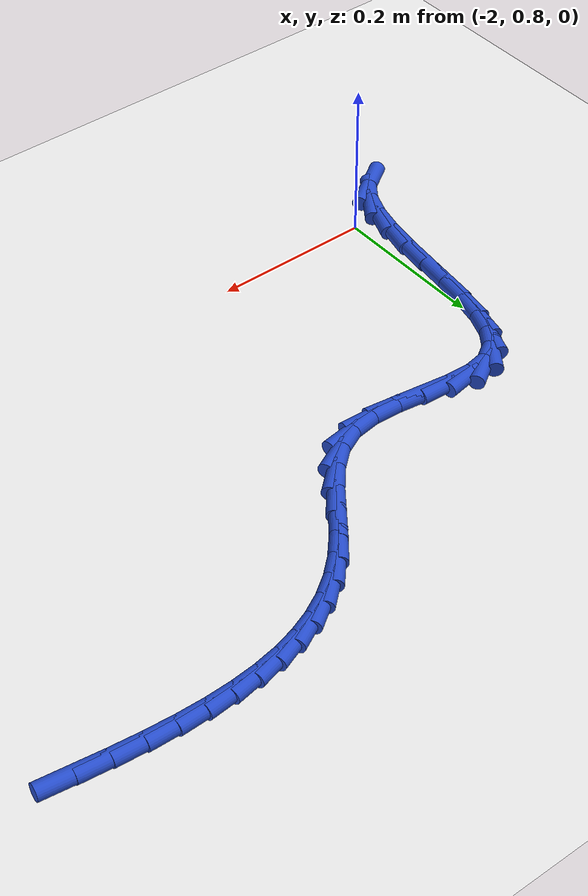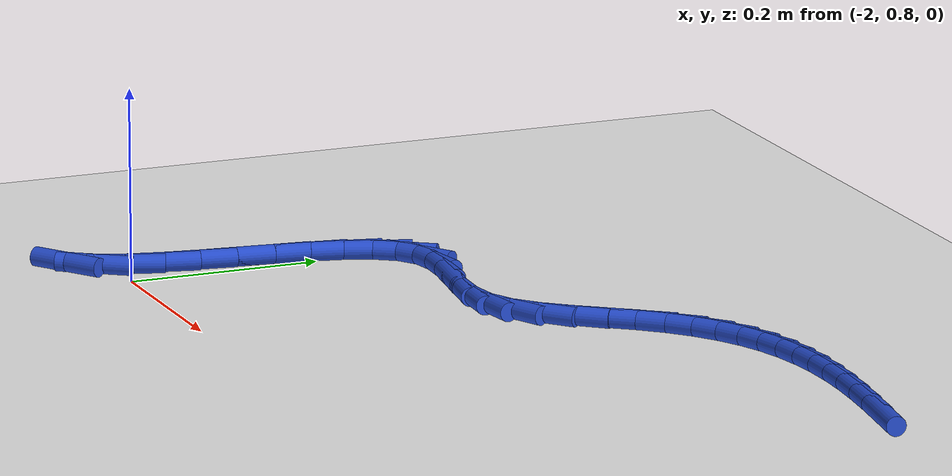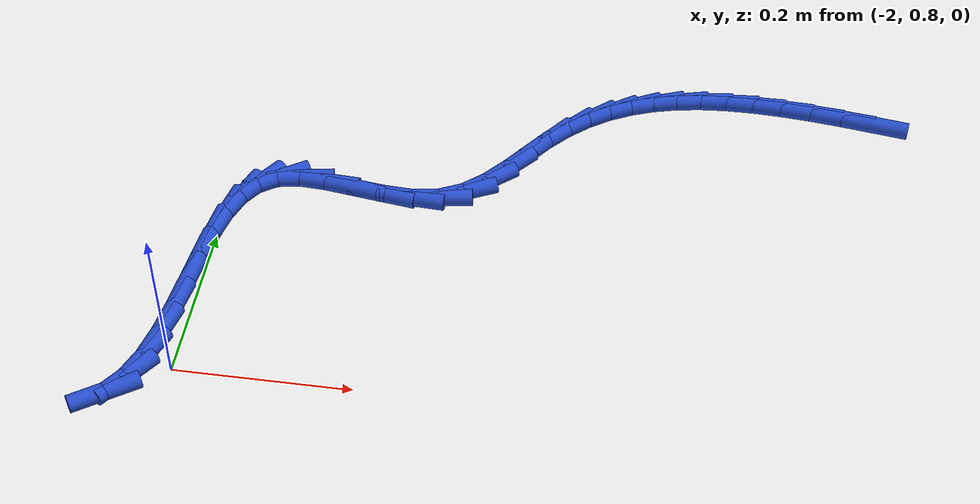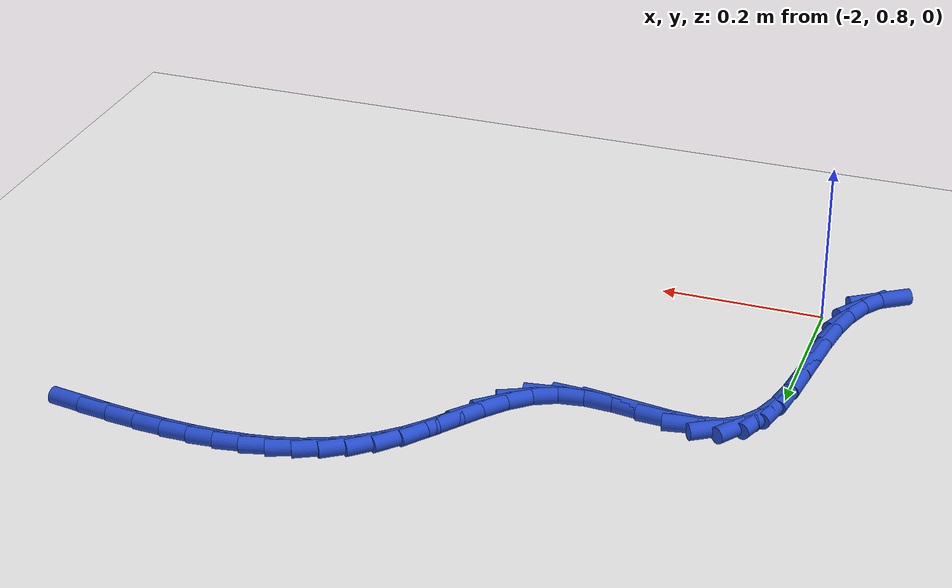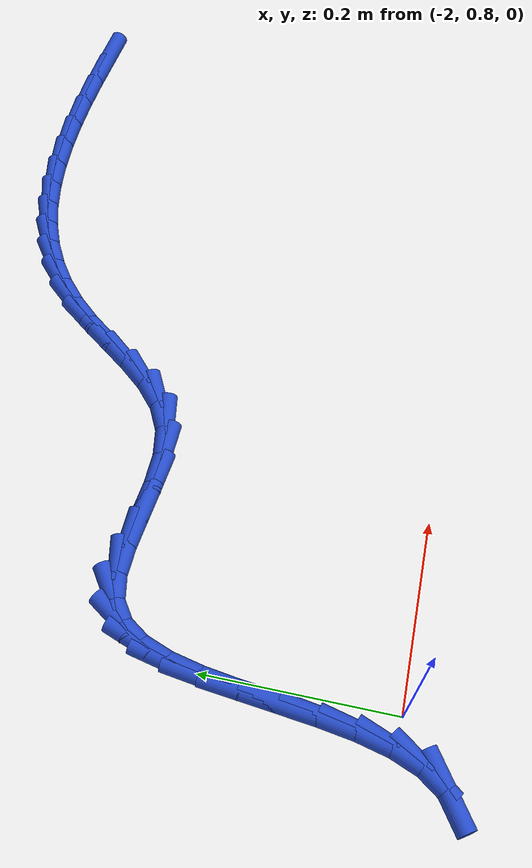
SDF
<sdf version="1.6">
 <world name="default">
  <model name="ground_plane">
   <static>1</static>
   <link name="link">
    <collision name="collision">
     <geometry><plane><normal>0 0 1</normal><size>100 100</size></plane></geometry>
     <surface><friction><ode><mu>100</mu><mu2>50</mu2></ode></friction></surface>
    </collision>
    <visual name="visual">
     <cast_shadows>0</cast_shadows>
     <geometry><plane><normal>0 0 1</normal><size>100 100</size></plane></geometry>
     <material>
      <script><uri>file://media/materials/scripts/gazebo.material</uri><name>Gazebo/WhiteGlow</name></script>
     </material>
    </visual>
   </link>
  </model>
  <model name="line">
   <link name="link_62">
    <pose>-1.2545794086238367 1.2839978153059892 0.01 0 1.57 -0.14442993478592728</pose>
    <collision name="collision">
     <geometry><cylinder><radius>0.01</radius><length>0.08</length></cylinder></geometry>
    </collision>
    <visual name="visual">
     <material>
      <script><name>Gazebo/Blue</name><uri>file://media/materials/scripts/gazebo.material</uri></script>
     </material>
     <geometry><cylinder><radius>0.01</radius><length>0.08</length></cylinder></geometry>
    </visual>
   </link>
   <link name="link_63">
    <pose>-1.2942668618375504 1.2897700638931013 0.01 0 1.57 -0.1192761792237048</pose>
    <collision name="collision">
     <geometry><cylinder><radius>0.01</radius><length>0.08</length></cylinder></geometry>
    </collision>
    <visual name="visual">
     <material>
      <script><name>Gazebo/Blue</name><uri>file://media/materials/scripts/gazebo.material</uri></script>
     </material>
     <geometry><cylinder><radius>0.01</radius><length>0.08</length></cylinder></geometry>
    </visual>
   </link>
   <link name="link_64">
    <pose>-1.3321594873666056 1.2943113077401995 0.01 0 1.57 -0.08537701563046377</pose>
    <collision name="collision">
     <geometry><cylinder><radius>0.01</radius><length>0.08</length></cylinder></geometry>
    </collision>
    <visual name="visual">
     <material>
      <script><name>Gazebo/Blue</name><uri>file://media/materials/scripts/gazebo.material</uri></script>
     </material>
     <geometry><cylinder><radius>0.01</radius><length>0.08</length></cylinder></geometry>
    </visual>
   </link>
   <link name="link_65">
    <pose>-1.3683018481094011 1.2974045540927421 0.01 0 1.57 -0.04145111778018368</pose>
    <collision name="collision">
     <geometry><cylinder><radius>0.01</radius><length>0.08</length></cylinder></geometry>
    </collision>
    <visual name="visual">
     <material>
      <script><name>Gazebo/Blue</name><uri>file://media/materials/scripts/gazebo.material</uri></script>
     </material>
     <geometry><cylinder><radius>0.01</radius><length>0.08</length></cylinder></geometry>
    </visual>
   </link>
   <link name="link_66">
    <pose>-1.4027385069643354 1.2988328101961863 0.01 0 1.57 0.013842584986247157</pose>
    <collision name="collision">
     <geometry><cylinder><radius>0.01</radius><length>0.08</length></cylinder></geometry>
    </collision>
    <visual name="visual">
     <material>
      <script><name>Gazebo/Blue</name><uri>file://media/materials/scripts/gazebo.material</uri></script>
     </material>
     <geometry><cylinder><radius>0.01</radius><length>0.08</length></cylinder></geometry>
    </visual>
   </link>
   <link name="link_67">
    <pose>-1.4355140268298054 1.29837908329599 0.01 0 1.57 0.0817426464039682</pose>
    <collision name="collision">
     <geometry><cylinder><radius>0.01</radius><length>0.08</length></cylinder></geometry>
    </collision>
    <visual name="visual">
     <material>
      <script><name>Gazebo/Blue</name><uri>file://media/materials/scripts/gazebo.material</uri></script>
     </material>
     <geometry><cylinder><radius>0.01</radius><length>0.08</length></cylinder></geometry>
    </visual>
   </link>
   <link name="link_68">
    <pose>-1.4666729706042119 1.295826380637612 0.01 0 1.57 0.16309317818951494</pose>
    <collision name="collision">
     <geometry><cylinder><radius>0.01</radius><length>0.08</length></cylinder></geometry>
    </collision>
    <visual name="visual">
     <material>
      <script><name>Gazebo/Blue</name><uri>file://media/materials/scripts/gazebo.material</uri></script>
     </material>
     <geometry><cylinder><radius>0.01</radius><length>0.08</length></cylinder></geometry>
    </visual>
   </link>
   <link name="link_69">
    <pose>-1.496259901185951 1.2909577094665095 0.01 0 1.57 0.25790886222534687</pose>
    <collision name="collision">
     <geometry><cylinder><radius>0.01</radius><length>0.08</length></cylinder></geometry>
    </collision>
    <visual name="visual">
     <material>
      <script><name>Gazebo/Blue</name><uri>file://media/materials/scripts/gazebo.material</uri></script>
     </material>
     <geometry><cylinder><radius>0.01</radius><length>0.08</length></cylinder></geometry>
    </visual>
   </link>
   <link name="link_70">
    <pose>-1.5243193814734226 1.283556077028141 0.01 0 1.57 0.3648714225045601</pose>
    <collision name="collision">
     <geometry><cylinder><radius>0.01</radius><length>0.08</length></cylinder></geometry>
    </collision>
    <visual name="visual">
     <material>
      <script><name>Gazebo/Blue</name><uri>file://media/materials/scripts/gazebo.material</uri></script>
     </material>
     <geometry><cylinder><radius>0.01</radius><length>0.08</length></cylinder></geometry>
    </visual>
   </link>
   <link name="link_71">
    <pose>-1.550895974365024 1.2734044905679636 0.01 0 1.57 0.4809784214079071</pose>
    <collision name="collision">
     <geometry><cylinder><radius>0.01</radius><length>0.08</length></cylinder></geometry>
    </collision>
    <visual name="visual">
     <material>
      <script><name>Gazebo/Blue</name><uri>file://media/materials/scripts/gazebo.material</uri></script>
     </material>
     <geometry><cylinder><radius>0.01</radius><length>0.08</length></cylinder></geometry>
    </visual>
   </link>
   <link name="link_72">
    <pose>-1.5760342427591543 1.2602859573314364 0.01 0 1.57 0.6016614773602363</pose>
    <collision name="collision">
     <geometry><cylinder><radius>0.01</radius><length>0.08</length></cylinder></geometry>
    </collision>
    <visual name="visual">
     <material>
      <script><name>Gazebo/Blue</name><uri>file://media/materials/scripts/gazebo.material</uri></script>
     </material>
     <geometry><cylinder><radius>0.01</radius><length>0.08</length></cylinder></geometry>
    </visual>
   </link>
   <link name="link_73">
    <pose>-1.5997787495542117 1.243983484564016 0.01 0 1.57 0.7215424525169127</pose>
    <collision name="collision">
     <geometry><cylinder><radius>0.01</radius><length>0.08</length></cylinder></geometry>
    </collision>
    <visual name="visual">
     <material>
      <script><name>Gazebo/Blue</name><uri>file://media/materials/scripts/gazebo.material</uri></script>
     </material>
     <geometry><cylinder><radius>0.01</radius><length>0.08</length></cylinder></geometry>
    </visual>
   </link>
   <link name="link_74">
    <pose>-1.6221740576485941 1.2242800795111617 0.01 0 1.57 0.8355153975070486</pose>
    <collision name="collision">
     <geometry><cylinder><radius>0.01</radius><length>0.08</length></cylinder></geometry>
    </collision>
    <visual name="visual">
     <material>
      <script><name>Gazebo/Blue</name><uri>file://media/materials/scripts/gazebo.material</uri></script>
     </material>
     <geometry><cylinder><radius>0.01</radius><length>0.08</length></cylinder></geometry>
    </visual>
   </link>
   <link name="link_75">
    <pose>-1.6432655830975702 1.2009609494797389 0.01 0 1.57 0.9194087114371494</pose>
    <collision name="collision">
     <geometry><cylinder><radius>0.01</radius><length>0.08</length></cylinder></geometry>
    </collision>
    <visual name="visual">
     <material>
      <script><name>Gazebo/Blue</name><uri>file://media/materials/scripts/gazebo.material</uri></script>
     </material>
     <geometry><cylinder><radius>0.01</radius><length>0.08</length></cylinder></geometry>
    </visual>
   </link>
   <link name="link_76">
    <pose>-1.663390591743341 1.174563903644059 0.01 0 1.57 0.9297704227407712</pose>
    <collision name="collision">
     <geometry><cylinder><radius>0.01</radius><length>0.08</length></cylinder></geometry>
    </collision>
    <visual name="visual">
     <material>
      <script><name>Gazebo/Blue</name><uri>file://media/materials/scripts/gazebo.material</uri></script>
     </material>
     <geometry><cylinder><radius>0.01</radius><length>0.08</length></cylinder></geometry>
    </visual>
   </link>
   <link name="link_77">
    <pose>-1.6836029474469532 1.1474746641505664 0.01 0 1.57 0.8637215015365295</pose>
    <collision name="collision">
     <geometry><cylinder><radius>0.01</radius><length>0.08</length></cylinder></geometry>
    </collision>
    <visual name="visual">
     <material>
      <script><name>Gazebo/Blue</name><uri>file://media/materials/scripts/gazebo.material</uri></script>
     </material>
     <geometry><cylinder><radius>0.01</radius><length>0.08</length></cylinder></geometry>
    </visual>
   </link>
   <link name="link_78">
    <pose>-1.7050645019166821 1.1223574246715515 0.01 0 1.57 0.7090803871804763</pose>
    <collision name="collision">
     <geometry><cylinder><radius>0.01</radius><length>0.08</length></cylinder></geometry>
    </collision>
    <visual name="visual">
     <material>
      <script><name>Gazebo/Blue</name><uri>file://media/materials/scripts/gazebo.material</uri></script>
     </material>
     <geometry><cylinder><radius>0.01</radius><length>0.08</length></cylinder></geometry>
    </visual>
   </link>
   <link name="link_79">
    <pose>-1.7289371068608026 1.1018763788793076 0.01 0 1.57 0.44774948250662944</pose>
    <collision name="collision">
     <geometry><cylinder><radius>0.01</radius><length>0.08</length></cylinder></geometry>
    </collision>
    <visual name="visual">
     <material>
      <script><name>Gazebo/Blue</name><uri>file://media/materials/scripts/gazebo.material</uri></script>
     </material>
     <geometry><cylinder><radius>0.01</radius><length>0.08</length></cylinder></geometry>
    </visual>
   </link>
   <link name="link_80">
    <pose>-1.756382230927145 1.0886949683589635 0.01 0 1.57 0.14105007680048615</pose>
    <collision name="collision">
     <geometry><cylinder><radius>0.01</radius><length>0.08</length></cylinder></geometry>
    </collision>
    <visual name="visual">
     <material>
      <script><name>Gazebo/Blue</name><uri>file://media/materials/scripts/gazebo.material</uri></script>
     </material>
     <geometry><cylinder><radius>0.01</radius><length>0.08</length></cylinder></geometry>
    </visual>
   </link>
   <link name="link_81">
    <pose>-1.787919706054736 1.084216868153167 0.01 0 1.57 -0.05245119264946767</pose>
    <collision name="collision">
     <geometry><cylinder><radius>0.01</radius><length>0.08</length></cylinder></geometry>
    </collision>
    <visual name="visual">
     <material>
      <script><name>Gazebo/Blue</name><uri>file://media/materials/scripts/gazebo.material</uri></script>
     </material>
     <geometry><cylinder><radius>0.01</radius><length>0.08</length></cylinder></geometry>
    </visual>
   </link>
   <link name="link_82">
    <pose>-1.8221168180619594 1.086012194155466 0.01 0 1.57 -0.13922891966533646</pose>
    <collision name="collision">
     <geometry><cylinder><radius>0.01</radius><length>0.08</length></cylinder></geometry>
    </collision>
    <visual name="visual">
     <material>
      <script><name>Gazebo/Blue</name><uri>file://media/materials/scripts/gazebo.material</uri></script>
     </material>
     <geometry><cylinder><radius>0.01</radius><length>0.08</length></cylinder></geometry>
    </visual>
   </link>
   <link name="link_83">
    <pose>-1.8571707948383407 1.0909245037705364 0.01 0 1.57 -0.14190479173713325</pose>
    <collision name="collision">
     <geometry><cylinder><radius>0.01</radius><length>0.08</length></cylinder></geometry>
    </collision>
    <visual name="visual">
     <material>
      <script><name>Gazebo/Blue</name><uri>file://media/materials/scripts/gazebo.material</uri></script>
     </material>
     <geometry><cylinder><radius>0.01</radius><length>0.08</length></cylinder></geometry>
    </visual>
   </link>
   <link name="link_84">
    <pose>-1.8912788642734089 1.0957973544030566 0.01 0 1.57 -0.05342429580085784</pose>
    <collision name="collision">
     <geometry><cylinder><radius>0.01</radius><length>0.08</length></cylinder></geometry>
    </collision>
    <visual name="visual">
     <material>
      <script><name>Gazebo/Blue</name><uri>file://media/materials/scripts/gazebo.material</uri></script>
     </material>
     <geometry><cylinder><radius>0.01</radius><length>0.08</length></cylinder></geometry>
    </visual>
   </link>
   <link name="link_85">
    <pose>-1.9226382542566902 1.0974743034577028 0.01 0 1.57 0.17266671812136425</pose>
    <collision name="collision">
     <geometry><cylinder><radius>0.01</radius><length>0.08</length></cylinder></geometry>
    </collision>
    <visual name="visual">
     <material>
      <script><name>Gazebo/Blue</name><uri>file://media/materials/scripts/gazebo.material</uri></script>
     </material>
     <geometry><cylinder><radius>0.01</radius><length>0.08</length></cylinder></geometry>
    </visual>
   </link>
   <link name="link_86">
    <pose>-1.949446192677712 1.0927989083391525 0.01 0 1.57 0.5808214861749329</pose>
    <collision name="collision">
     <geometry><cylinder><radius>0.01</radius><length>0.08</length></cylinder></geometry>
    </collision>
    <visual name="visual">
     <material>
      <script><name>Gazebo/Blue</name><uri>file://media/materials/scripts/gazebo.material</uri></script>
     </material>
     <geometry><cylinder><radius>0.01</radius><length>0.08</length></cylinder></geometry>
    </visual>
   </link>
   <link name="link_87">
    <pose>-1.970231210344873 1.0791568036044688 0.01 0 1.57 0.9674846434073046</pose>
    <collision name="collision">
     <geometry><cylinder><radius>0.01</radius><length>0.08</length></cylinder></geometry>
    </collision>
    <visual name="visual">
     <material>
      <script><name>Gazebo/Blue</name><uri>file://media/materials/scripts/gazebo.material</uri></script>
     </material>
     <geometry><cylinder><radius>0.01</radius><length>0.08</length></cylinder></geometry>
    </visual>
   </link>
   <link name="link_88">
    <pose>-1.9854436528714046 1.0570780932297281 0.01 0 1.57 1.2132065307818174</pose>
    <collision name="collision">
     <geometry><cylinder><radius>0.01</radius><length>0.08</length></cylinder></geometry>
    </collision>
    <visual name="visual">
     <material>
      <script><name>Gazebo/Blue</name><uri>file://media/materials/scripts/gazebo.material</uri></script>
     </material>
     <geometry><cylinder><radius>0.01</radius><length>0.08</length></cylinder></geometry>
    </visual>
   </link>
   <link name="link_89">
    <pose>-1.9962251225766705 1.0282239139875318 0.01 0 1.57 1.3536770591541756</pose>
    <collision name="collision">
     <geometry><cylinder><radius>0.01</radius><length>0.08</length></cylinder></geometry>
    </collision>
    <visual name="visual">
     <material>
      <script><name>Gazebo/Blue</name><uri>file://media/materials/scripts/gazebo.material</uri></script>
     </material>
     <geometry><cylinder><radius>0.01</radius><length>0.08</length></cylinder></geometry>
    </visual>
   </link>
   <link name="link_90">
    <pose>-2.0037181314912753 0.9942568911181371 0.01 0 1.57 1.4288537005663158</pose>
    <collision name="collision">
     <geometry><cylinder><radius>0.01</radius><length>0.08</length></cylinder></geometry>
    </collision>
    <visual name="visual">
     <material>
      <script><name>Gazebo/Blue</name><uri>file://media/materials/scripts/gazebo.material</uri></script>
     </material>
     <geometry><cylinder><radius>0.01</radius><length>0.08</length></cylinder></geometry>
    </visual>
   </link>
   <link name="link_91">
    <pose>-2.009065191645821 0.9568396498617989 0.01 0 1.57 1.4604532926762506</pose>
    <collision name="collision">
     <geometry><cylinder><radius>0.01</radius><length>0.08</length></cylinder></geometry>
    </collision>
    <visual name="visual">
     <material>
      <script><name>Gazebo/Blue</name><uri>file://media/materials/scripts/gazebo.material</uri></script>
     </material>
     <geometry><cylinder><radius>0.01</radius><length>0.08</length></cylinder></geometry>
    </visual>
   </link>
   <link name="link_92">
    <pose>-2.0134088150709126 0.9176348154587757 0.01 0 1.57 1.4573089175455438</pose>
    <collision name="collision">
     <geometry><cylinder><radius>0.01</radius><length>0.08</length></cylinder></geometry>
    </collision>
    <visual name="visual">
     <material>
      <script><name>Gazebo/Blue</name><uri>file://media/materials/scripts/gazebo.material</uri></script>
     </material>
     <geometry><cylinder><radius>0.01</radius><length>0.08</length></cylinder></geometry>
    </visual>
   </link>
   <link name="link_93">
    <pose>-2.0178915137971525 0.8783050131493223 0.01 0 1.57 1.419436848662857</pose>
    <collision name="collision">
     <geometry><cylinder><radius>0.01</radius><length>0.08</length></cylinder></geometry>
    </collision>
    <visual name="visual">
     <material>
      <script><name>Gazebo/Blue</name><uri>file://media/materials/scripts/gazebo.material</uri></script>
     </material>
     <geometry><cylinder><radius>0.01</radius><length>0.08</length></cylinder></geometry>
    </visual>
   </link>
   <link name="link_94">
    <pose>-2.023655799855146 0.8405128681736962 0.01 0 1.57 1.3383604895182728</pose>
    <collision name="collision">
     <geometry><cylinder><radius>0.01</radius><length>0.08</length></cylinder></geometry>
    </collision>
    <visual name="visual">
     <material>
      <script><name>Gazebo/Blue</name><uri>file://media/materials/scripts/gazebo.material</uri></script>
     </material>
     <geometry><cylinder><radius>0.01</radius><length>0.08</length></cylinder></geometry>
    </visual>
   </link>
   <link name="link_95">
    <pose>-2.031844185275496 0.8059210057721526 0.01 0 1.57 1.1942568542257124</pose>
    <collision name="collision">
     <geometry><cylinder><radius>0.01</radius><length>0.08</length></cylinder></geometry>
    </collision>
    <visual name="visual">
     <material>
      <script><name>Gazebo/Blue</name><uri>file://media/materials/scripts/gazebo.material</uri></script>
     </material>
     <geometry><cylinder><radius>0.01</radius><length>0.08</length></cylinder></geometry>
    </visual>
   </link>
   <link name="link_96">
    <pose>-2.0435991820888058 0.7761920511849495 0.01 0 1.57 0.9536858830319113</pose>
    <collision name="collision">
     <geometry><cylinder><radius>0.01</radius><length>0.08</length></cylinder></geometry>
    </collision>
    <visual name="visual">
     <material>
      <script><name>Gazebo/Blue</name><uri>file://media/materials/scripts/gazebo.material</uri></script>
     </material>
     <geometry><cylinder><radius>0.01</radius><length>0.08</length></cylinder></geometry>
    </visual>
   </link>
   <link name="link_97">
    <pose>-2.060063302325679 0.7529886296523424 0.01 0 1.57 0.5926742783194289</pose>
    <collision name="collision">
     <geometry><cylinder><radius>0.01</radius><length>0.08</length></cylinder></geometry>
    </collision>
    <visual name="visual">
     <material>
      <script><name>Gazebo/Blue</name><uri>file://media/materials/scripts/gazebo.material</uri></script>
     </material>
     <geometry><cylinder><radius>0.01</radius><length>0.08</length></cylinder></geometry>
    </visual>
   </link>
  </model>
 </world>
</sdf>
